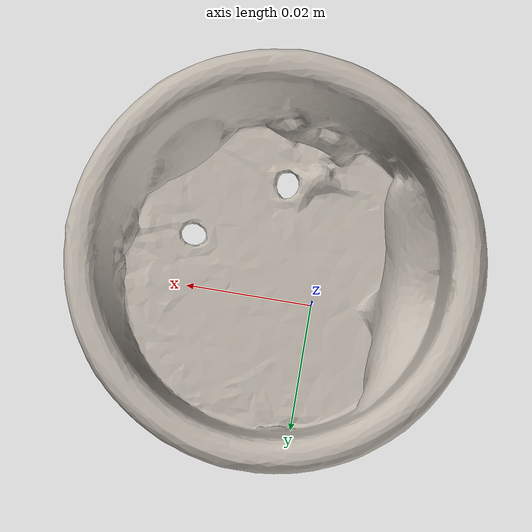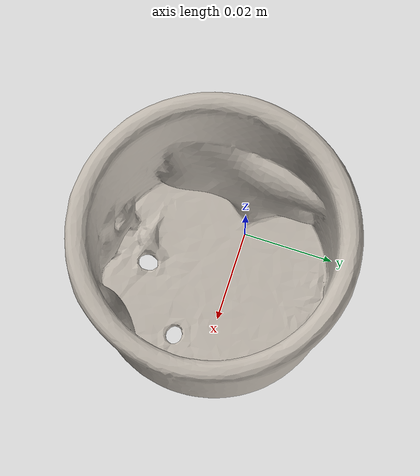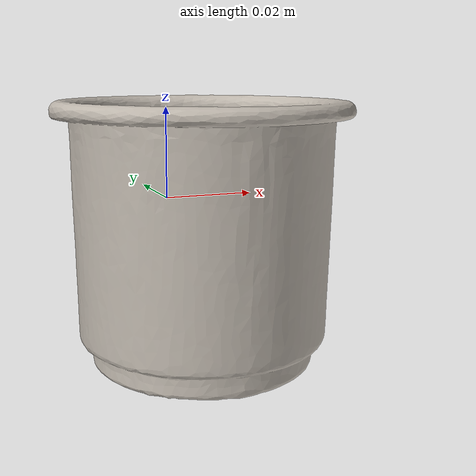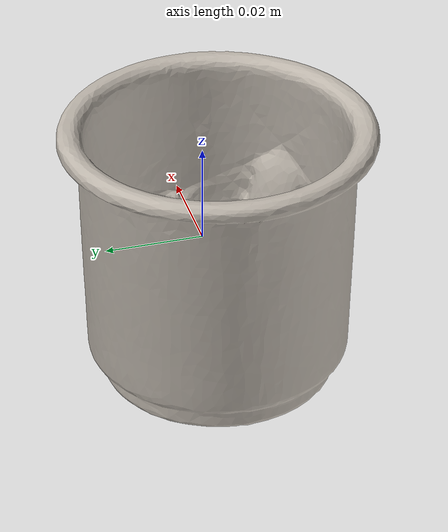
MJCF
<mujoco model="bread">
  <asset>
    <mesh file="nontextured.stl" name="obj_mesh" scale="0.8 0.8 0.8"/>
    <texture file="../../../../../textures/bread.png" type="2d" name="tex-bread" />
    <material name="bread" reflectance="0.7" texrepeat="15 15" texture="tex-bread" texuniform="true"/>
  </asset>
  <worldbody>
    <body>
      <body name="collision">
        <geom pos="0.032952999999999996 -0.025987999999999997 -0.03561" mesh="obj_mesh" type="mesh" solimp="0.998 0.998 0.001" solref="0.001 1" density="50" friction="0.95 0.3 0.1"  material="bread" group="1" condim="4"/>
      </body>
      <body name="visual">
        <geom pos="0.032952999999999996 -0.025987999999999997 -0.03561" mesh="obj_mesh" type="mesh" material="bread"  conaffinity="0" contype="0"  group="0" mass="0.0001"/>
        <geom pos="0.032952999999999996 -0.025987999999999997 -0.03561" mesh="obj_mesh" type="mesh" material="bread"  conaffinity="0" contype="0"  group="1" mass="0.0001"/>
      </body>
      <site rgba="0 0 0 0" size="0.005" pos="0 0 -0.036088999999999996" name="bottom_site"/>
      <site rgba="0 0 0 0" size="0.005" pos="0 0 0.036088999999999996" name="top_site"/>
      <site rgba="0 0 0 0" size="0.005" pos="0.04037 0.040436 0.036088999999999996" name="horizontal_radius_site"/>
    </body>
  </worldbody>
</mujoco>
